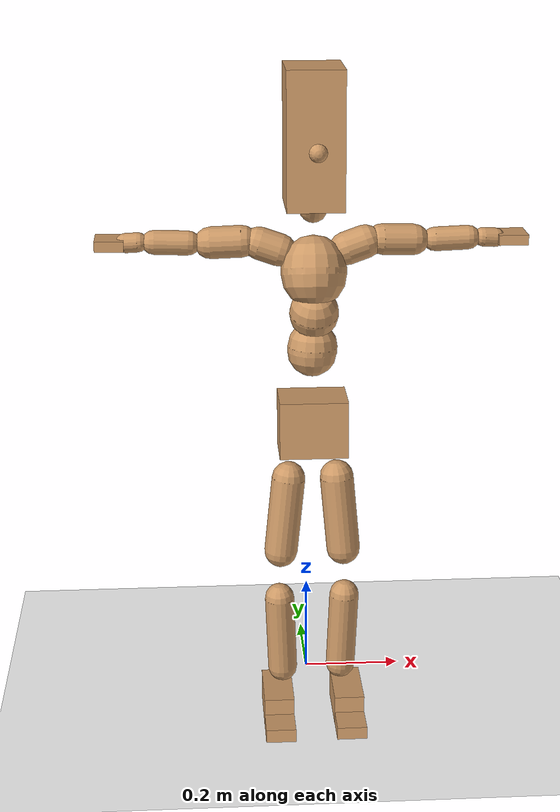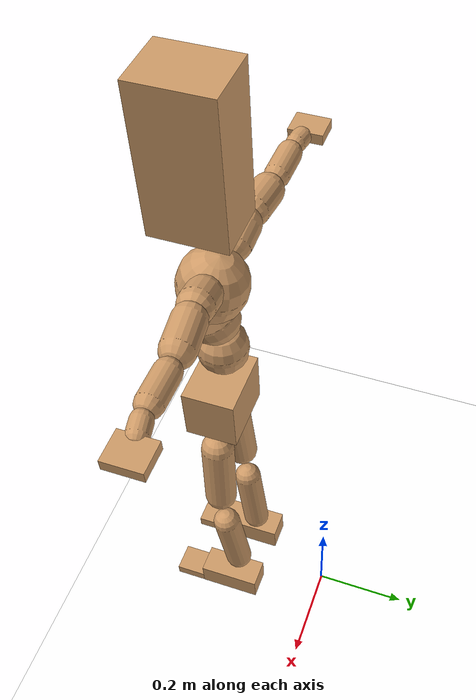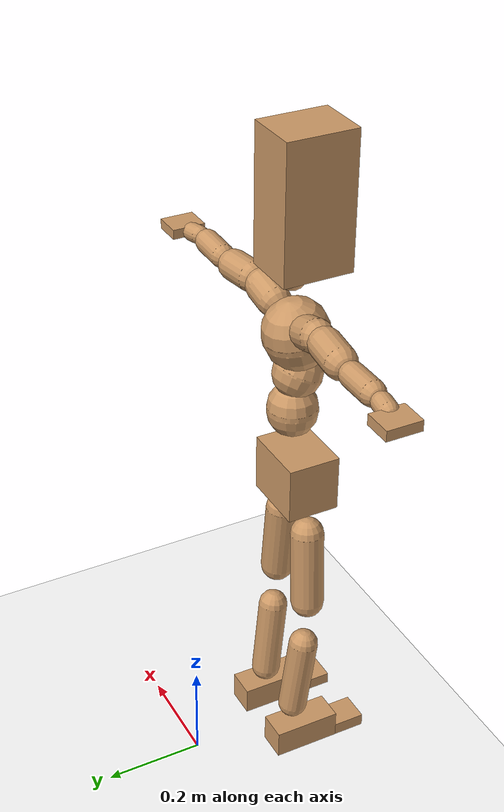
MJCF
<mujoco model="humanoid">
  <option integrator="implicitfast" />

  <visual>
    <global offwidth="1280" offheight="960" />
    <headlight active="1" ambient="0.34 0.34 0.34" diffuse="0.5 0.5 0.5" />
  </visual>

  <default>
    <joint damping="2" stiffness="2" armature="0.01" limited="true" solimplimit="0 .99 .01" />
    <geom condim="1" friction="0.7 0.005 0.0001" solimp=".99 .99 .003" solref="0.015 1" margin="0.001" rgba="0.8 0.6 .4 1" />
    <default class="smplcontact">
      <geom condim="3" friction="1. 0.005 0.0001" solref="0.015 1" solimp="0.98 0.98 0.001" priority="1" />
    </default>
    <default class="stiff_medium">
      <joint stiffness="10" />
    </default>
    <default class="stiff_medium_higher">
      <joint stiffness="50" />
    </default>
    <default class="stiff_high">
      <joint stiffness="100" />
    </default>
  </default>

  <asset>
    <texture type="skybox" builtin="gradient" rgb1="0.99 0.99 0.99" rgb2="0.608 0.828 0.892" width="100" />
    <texture builtin="flat" height="1278" mark="cross" markrgb="1 1 1" name="texgeom" random="0.01" rgb1="0.8 0.6 0.4" rgb2="0.8 0.6 0.4" type="cube" width="127" />
    <texture name="texplane" type="2d" builtin="checker" markrgb="1 1 1" rgb1="0.756 0.772 0.76" rgb2="0.6 0.6 0.6" width="100" height="100" />
    <material name="MatPlane" reflectance="0.5" texture="texplane" texrepeat="1 1" texuniform="true" />
    <material name="geom" texture="texgeom" texuniform="true" />
  </asset>

  <worldbody>
    <light name="tracking_light" pos="0 0 7" dir="0 0 -1" directional="true" cutoff="100" exponent="1" diffuse="1 1 1" specular="0.1 0.1 0.1" mode="trackcom" />
    <camera name="back" pos="0 3 2.4" xyaxes="-1 0 0 0 -1 2" mode="trackcom" />
    <camera name="side" pos="-3 0 2.4" xyaxes="0 -1 0 1 0 2" mode="trackcom" />
    <camera name="front_side" pos="-2.8 -2.8 0.8" xyaxes="0.5 -0.5 0 0.1 0.1 1" mode="trackcom" />
    <geom condim="3" name="floor" pos="0 0 0" rgba="1 1 1 1" size="100 100 .2" type="plane" material="MatPlane" />
    <body name="Pelvis" pos="-0.0018 -0.2233 0.64805" euler="90 0 0">
      <site name="Pelvis" size="0.01" />
      <freejoint name="Pelvis" />
      <geom type="box" pos="0 -0.00952964 -0.0034551" size="0.0671546 0.0568628 0.0521406" quat="1.0000 0.0000 0.0000 0.0000" density="3165.830099" name="Pelvis" />
      <body name="L_Hip" pos="0.0436599 -0.0719842 -0.00427176">
        <joint name="L_Hip_x" type="hinge" pos="0 0 0" axis="1 0 0" stiffness="10" range="-160.0 22.92" class="stiff_medium" damping="15" />
        <joint name="L_Hip_y" type="hinge" pos="0 0 0" axis="0 1 0" stiffness="10" range="-70.0 70.0" class="stiff_medium" damping="10" />
        <joint name="L_Hip_z" type="hinge" pos="0 0 0" axis="0 0 1" stiffness="10" range="-28.65 90.0" class="stiff_medium" damping="10" />
        <geom type="capsule" density="2040.816327" fromto="0.00472379 -0.0514552 -0.000617352 0.018788 -0.205955 -0.00246971" size="0.0336589" name="L_Hip" />
        <body name="L_Knee" pos="0.0235118 -0.257411 -0.00308706">
          <joint name="L_Knee_x" type="hinge" pos="0 0 0" axis="1 0 0" range="-5.16 171.89" damping="8" />
          <joint name="L_Knee_y" type="hinge" pos="0 0 0" axis="0 1 0" range="-4.58 6.88" damping="8" />
          <joint name="L_Knee_z" type="hinge" pos="0 0 0" axis="0 0 1" range="-6.88 4.58" damping="8" />
          <geom type="capsule" density="1234.567901" fromto="-0.00185694 -0.054609 -0.00597782 -0.00748261 -0.21844 -0.0240211" size="0.0296089" name="L_Knee" />
          <body name="L_Ankle" pos="-0.00933956 -0.273049 -0.029999">
            <joint name="L_Ankle_x" type="hinge" pos="0 0 0" axis="1 0 0" range="-45.84 45.84" class="stiff_medium" damping="6" />
            <joint name="L_Ankle_y" type="hinge" pos="0 0 0" axis="0 1 0" range="-74.48 22.92" class="stiff_medium" damping="3" />
            <joint name="L_Ankle_z" type="hinge" pos="0 0 0" axis="0 0 1" range="-4.58 4.58" class="stiff_medium" damping="6" />
            <geom type="box" pos="0.0146371 -0.015014 0.0191539" size="0.0303421 0.0291485 0.067276" quat="1.0000 0.0000 0.0000 0.0000" density="449.071558" name="L_Ankle" class="smplcontact" />
            <body name="L_Toe" pos="0.0165845 -0.0350536 0.0944239">
              <joint name="L_Toe_x" type="hinge" pos="0 0 0" axis="1 0 0" range="-91.67 22.92" />
              <joint name="L_Toe_y" type="hinge" pos="0 0 0" axis="0 1 0" range="-4.58 4.58" />
              <joint name="L_Toe_z" type="hinge" pos="0 0 0" axis="0 0 1" range="-4.58 4.58" />
              <geom type="box" pos="-0.0018846 0.0034551 0.0196288" size="0.030028 0.012564 0.0392576" quat="1.0000 0.0000 0.0000 0.0000" density="423.206892" name="L_Toe" class="smplcontact" />
            </body>
          </body>
        </body>
      </body>
      <body name="R_Hip" pos="-0.0425291 -0.0712754 -0.00270126">
        <joint name="R_Hip_x" type="hinge" pos="0 0 0" axis="1 0 0" stiffness="10" range="-160.0 22.92" class="stiff_medium" damping="15" />
        <joint name="R_Hip_y" type="hinge" pos="0 0 0" axis="0 1 0" stiffness="10" range="-70.0 70.0" class="stiff_medium" damping="10" />
        <joint name="R_Hip_z" type="hinge" pos="0 0 0" axis="0 0 1" stiffness="10" range="-90.0 28.65" class="stiff_medium" damping="10" />
        <geom type="capsule" density="2040.816327" fromto="-0.00527304 -0.0524845 -0.0012302 -0.0209838 -0.210003 -0.0048663" size="0.0331664" name="R_Hip" />
        <body name="R_Knee" pos="-0.0262568 -0.262488 -0.0060965">
          <joint name="R_Knee_x" type="hinge" pos="0 0 0" axis="1 0 0" range="-5.16 171.89" damping="8" />
          <joint name="R_Knee_y" type="hinge" pos="0 0 0" axis="0 1 0" range="-6.88 4.58" damping="8" />
          <joint name="R_Knee_z" type="hinge" pos="0 0 0" axis="0 0 1" range="-4.58 6.88" damping="8" />
          <geom type="capsule" density="1234.567901" fromto="0.00218637 -0.0546801 -0.00582286 0.00863531 -0.218648 -0.0231801" size="0.0296089" name="R_Knee" />
          <body name="R_Ankle" pos="0.0108217 -0.273328 -0.029003">
            <joint name="R_Ankle_x" type="hinge" pos="0 0 0" axis="1 0 0" range="-45.84 45.84" class="stiff_medium" damping="6" />
            <joint name="R_Ankle_y" type="hinge" pos="0 0 0" axis="0 1 0" range="-22.92 74.48" class="stiff_medium" damping="3" />
            <joint name="R_Ankle_z" type="hinge" pos="0 0 0" axis="0 0 1" range="-4.58 4.58" class="stiff_medium" damping="6" />
            <geom type="box" pos="-0.0133178 -0.0109307 0.020262" size="0.0303421 0.030028 0.0684633" quat="1.0000 0.0000 0.0000 0.0000" density="434.700981" name="R_Ankle" class="smplcontact" />
            <body name="R_Toe" pos="-0.0159563 -0.0302164 0.0975898">
              <joint name="R_Toe_x" type="hinge" pos="0 0 0" axis="1 0 0" range="-91.67 22.92" />
              <joint name="R_Toe_y" type="hinge" pos="0 0 0" axis="0 1 0" range="-4.58 4.58" />
              <joint name="R_Toe_z" type="hinge" pos="0 0 0" axis="0 0 1" range="-4.58 4.58" />
              <geom type="box" pos="0.00263844 0.0028269 0.0179667" size="0.0300908 0.0135691 0.0390201" quat="1.0000 0.0000 0.0000 0.0000" density="407.384095" name="R_Toe" class="smplcontact" />
            </body>
          </body>
        </body>
      </body>
      <body name="Torso" pos="-0.0015705 0.0858455 -0.0167729">
        <joint name="Torso_x" type="hinge" pos="0 0 0" axis="1 0 0" range="-25.78 57.3" class="stiff_medium" damping="15" />
        <joint name="Torso_y" type="hinge" pos="0 0 0" axis="0 1 0" range="-57.3 57.3" class="stiff_high" damping="20" />
        <joint name="Torso_z" type="hinge" pos="0 0 0" axis="0 0 1" range="-34.38 34.38" class="stiff_high" damping="20" />
        <geom type="capsule" density="2040.816327" fromto="0.00194921 0.0483762 0.000389842 0.00234703 0.0591173 0.000469406" size="0.0488084" name="Torso" />
        <body name="Spine" pos="0.00429684 0.107573 0.000859367">
          <joint name="Spine_x" type="hinge" pos="0 0 0" axis="1 0 0" stiffness="10" range="-25.78 57.3" class="stiff_medium" damping="15" />
          <joint name="Spine_y" type="hinge" pos="0 0 0" axis="0 1 0" stiffness="10" range="-57.3 57.3" class="stiff_high" damping="8" />
          <joint name="Spine_z" type="hinge" pos="0 0 0" axis="0 0 1" stiffness="20" range="-34.38 34.38" class="stiff_high" damping="12" />
          <geom type="capsule" density="2040.816327" fromto="0.00051624 0.0189192 0.00910629 0.000595804 0.0231361 0.0111749" size="0.0479198" name="Spine" />
          <body name="Chest" pos="0.00111204 0.0420553 0.0202812">
            <joint name="Chest_x" type="hinge" pos="0 0 0" axis="1 0 0" stiffness="10" range="-25.78 57.3" class="stiff_medium" damping="15" />
            <joint name="Chest_y" type="hinge" pos="0 0 0" axis="0 1 0" stiffness="10" range="-57.3 57.3" class="stiff_high" damping="8" />
            <joint name="Chest_z" type="hinge" pos="0 0 0" axis="0 0 1" stiffness="20" range="-34.38 34.38" class="stiff_high" damping="12" />
            <geom type="capsule" density="2040.816327" fromto="-0.00064384 0.0542506 -0.0138121 -0.000723403 0.0662647 -0.0169151" size="0.0635969" name="Chest" />
            <body name="Neck" pos="-0.00200196 0.169707 -0.0359958">
              <joint name="Neck_x" type="hinge" pos="0 0 0" axis="1 0 0" range="-28.65 57.3" class="stiff_medium_higher" damping="10" />
              <joint name="Neck_y" type="hinge" pos="0 0 0" axis="0 1 0" range="-40.11 40.11" class="stiff_medium_higher" damping="10" />
              <joint name="Neck_z" type="hinge" pos="0 0 0" axis="0 0 1" range="-40.11 40.11" class="stiff_medium_higher" damping="10" />
              <geom type="capsule" density="1000" fromto="0.000797004 0.0102916 0.00814877 0.0032506 0.0411594 0.0325264" size="0.027529" name="Neck" />
              <body name="Head" pos="0.00411019 0.0514441 0.0406066">
                <joint name="Head_x" type="hinge" pos="0 0 0" axis="1 0 0" range="-28.65 57.3" class="stiff_medium_higher" damping="2" />
                <joint name="Head_y" type="hinge" pos="0 0 0" axis="0 1 0" range="-40.11 40.11" class="stiff_medium_higher" damping="2" />
                <joint name="Head_z" type="hinge" pos="0 0 0" axis="0 0 1" range="-40.11 40.11" class="stiff_medium_higher" damping="2" />
                <geom type="box" pos="-0.00381528 0.0997578 -0.0105374" size="0.055049 0.131416 0.0690384" quat="1.0000 0.0000 0.0000 0.0000" density="1018.069894" name="Head" />
                <geom type="capsule" name="nose" size="0.018168 0.009084" pos="0 0.0797151 0.04542" quat="1 0 0 0" mass="0" contype="0" conaffinity="0" />
              </body>
            </body>
            <body name="L_Thorax" pos="0.0498845 0.0968534 -0.0267082">
              <joint name="L_Thorax_x" type="hinge" pos="0 0 0" axis="1 0 0" range="-10.89 4.58" class="stiff_medium_higher" damping="20" />
              <joint name="L_Thorax_y" type="hinge" pos="0 0 0" axis="0 1 0" range="-28.65 17.19" class="stiff_medium_higher" damping="20" />
              <joint name="L_Thorax_z" type="hinge" pos="0 0 0" axis="0 0 1" range="-31.51 40.11" class="stiff_medium_higher" damping="20" />
              <geom type="capsule" density="1000" fromto="0.0123762 0.00414806 -0.00122208 0.0495042 0.0165921 -0.00482608" size="0.0323958" name="L_Thorax" />
              <body name="L_Shoulder" pos="0.0618803 0.0207401 -0.00604815">
                <joint name="L_Shoulder_x" type="hinge" pos="0 0 0" axis="1 0 0" range="-97.4 97.4" class="stiff_medium" damping="6" />
                <joint name="L_Shoulder_y" type="hinge" pos="0 0 0" axis="0 1 0" range="-108.86 80.21" class="stiff_medium" damping="6" />
                <joint name="L_Shoulder_z" type="hinge" pos="0 0 0" axis="0 0 1" range="-97.4 85.94" class="stiff_medium" damping="6" />
                <geom type="capsule" density="1000" fromto="0.0204998 -0.00103973 -0.00217309 0.0820408 -0.00404173 -0.00869059" size="0.0300842" name="L_Shoulder" />
                <body name="L_Elbow" pos="0.102541 -0.00508146 -0.0108637">
                  <joint name="L_Elbow_x" type="hinge" pos="0 0 0" axis="1 0 0" range="-17.19 4.58" damping="5" />
                  <joint name="L_Elbow_y" type="hinge" pos="0 0 0" axis="0 1 0" range="-180.0 17.19" damping="5" />
                  <joint name="L_Elbow_z" type="hinge" pos="0 0 0" axis="0 0 1" range="-100.84 4.58" damping="5" />
                  <geom type="capsule" density="1000" fromto="0.021414 0.000774366 -8.09841e-05 0.085742 0.00309637 -0.000381984" size="0.0235669" name="L_Elbow" />
                  <body name="L_Wrist" pos="0.107156 0.00387073 -0.000521158">
                    <joint name="L_Wrist_x" type="hinge" pos="0 0 0" axis="1 0 0" range="-180.0 22.92" />
                    <joint name="L_Wrist_y" type="hinge" pos="0 0 0" axis="0 1 0" range="-17.19 17.19" />
                    <joint name="L_Wrist_z" type="hinge" pos="0 0 0" axis="0 0 1" range="-22.92 22.92" />
                    <geom type="capsule" density="1000" fromto="0.0081483 -0.000772799 -0.00145505 0.0325923 -0.0031493 -0.00582005" size="0.0185044" name="L_Wrist" class="smplcontact" />
                    <body name="L_Hand" pos="0.0407414 -0.00398036 -0.00721705">
                      <joint name="L_Hand_x" type="hinge" pos="0 0 0" axis="1 0 0" range="-17.19 17.19" />
                      <joint name="L_Hand_y" type="hinge" pos="0 0 0" axis="0 1 0" range="-51.57 51.57" />
                      <joint name="L_Hand_z" type="hinge" pos="0 0 0" axis="0 0 1" range="-91.67 91.67" />
                      <geom type="box" pos="0.024157 0.0006282 -0.00364356" size="0.028665 0.00992556 0.0337972" quat="1.0000 0.0000 0.0000 0.0000" density="400.552564" name="L_Hand" class="smplcontact" />
                    </body>
                  </body>
                </body>
              </body>
            </body>
            <body name="R_Thorax" pos="-0.0520477 0.094911 -0.0295381">
              <joint name="R_Thorax_x" type="hinge" pos="0 0 0" axis="1 0 0" range="-10.89 4.58" class="stiff_medium_higher" damping="20" />
              <joint name="R_Thorax_y" type="hinge" pos="0 0 0" axis="0 1 0" range="-17.19 28.65" class="stiff_medium_higher" damping="20" />
              <joint name="R_Thorax_z" type="hinge" pos="0 0 0" axis="0 0 1" range="-40.11 31.51" class="stiff_medium_higher" damping="20" />
              <geom type="capsule" density="1000" fromto="-0.0130558 0.00441994 -0.00122592 -0.0522238 0.0176799 -0.00496592" size="0.031774" name="R_Thorax" />
              <body name="R_Shoulder" pos="-0.0652814 0.0221627 -0.00619202">
                <joint name="R_Shoulder_x" type="hinge" pos="0 0 0" axis="1 0 0" range="-97.4 97.4" class="stiff_medium" damping="6" />
                <joint name="R_Shoulder_y" type="hinge" pos="0 0 0" axis="0 1 0" range="-80.21 108.86" class="stiff_medium" damping="6" />
                <joint name="R_Shoulder_z" type="hinge" pos="0 0 0" axis="0 0 1" range="-85.94 97.4" class="stiff_medium" damping="6" />
                <geom type="capsule" density="1000" fromto="-0.0200255 -0.00107333 -0.0017057 -0.080184 -0.00423333 -0.0067617" size="0.0308989" name="R_Shoulder" />
                <body name="R_Elbow" pos="-0.100211 -0.00524853 -0.00846747">
                  <joint name="R_Elbow_x" type="hinge" pos="0 0 0" axis="1 0 0" range="-17.19 4.58" damping="5" />
                  <joint name="R_Elbow_y" type="hinge" pos="0 0 0" axis="0 1 0" range="-17.19 180.0" damping="5" />
                  <joint name="R_Elbow_z" type="hinge" pos="0 0 0" axis="0 0 1" range="-4.58 100.84" damping="5" />
                  <geom type="capsule" density="1000" fromto="-0.0219727 0.000697814 -0.000472775 -0.0878057 0.00267581 -0.00189178" size="0.0237415" name="R_Elbow" />
                  <body name="R_Wrist" pos="-0.109778 0.00337362 -0.00242273">
                    <joint name="R_Wrist_x" type="hinge" pos="0 0 0" axis="1 0 0" range="-180.0 22.92" />
                    <joint name="R_Wrist_y" type="hinge" pos="0 0 0" axis="0 1 0" range="-17.19 17.19" />
                    <joint name="R_Wrist_z" type="hinge" pos="0 0 0" axis="0 0 1" range="-22.92 22.92" />
                    <geom type="capsule" density="1000" fromto="-0.00819628 -0.000578989 -0.0010221 -0.0328343 -0.00237349 -0.0040291" size="0.0189699" name="R_Wrist" class="smplcontact" />
                    <body name="R_Hand" pos="-0.0410317 -0.00295256 -0.00499315">
                      <joint name="R_Hand_x" type="hinge" pos="0 0 0" axis="1 0 0" range="-17.19 17.19" />
                      <joint name="R_Hand_y" type="hinge" pos="0 0 0" axis="0 1 0" range="-51.57 51.57" />
                      <joint name="R_Hand_z" type="hinge" pos="0 0 0" axis="0 0 1" range="-91.67 91.67" />
                      <geom type="box" pos="-0.022638 -0.00056538 -0.00496278" size="0.027881 0.0103025 0.0342997" quat="1.0000 0.0000 0.0000 0.0000" density="403.679611" name="R_Hand" class="smplcontact" />
                    </body>
                  </body>
                </body>
              </body>
            </body>
          </body>
        </body>
      </body>
    </body>
  </worldbody>
  <actuator>
    <general name="L_Hip_x" joint="L_Hip_x" biastype="affine" gainprm="287.33006409732246" biasprm="-215.3247604770444 -180 -2.0" ctrllimited="true" ctrlrange="-1 1" forcerange="-360 360" />
    <general name="L_Hip_y" joint="L_Hip_y" biastype="affine" gainprm="219.9114857512855" biasprm="0.0 -180 -2.0" ctrllimited="true" ctrlrange="-1 1" forcerange="-360 360" />
    <general name="L_Hip_z" joint="L_Hip_z" biastype="affine" gainprm="186.3749841742145" biasprm="96.3683546488669 -180 -2.0" ctrllimited="true" ctrlrange="-1 1" forcerange="-360 360" />
    <general name="L_Knee_x" joint="L_Knee_x" biastype="affine" gainprm="278.10948965903646" biasprm="261.8988715665131 -180 -2.0" ctrllimited="true" ctrlrange="-1 1" forcerange="-360 360" />
    <general name="L_Knee_y" joint="L_Knee_y" biastype="affine" gainprm="18.001325905069514" biasprm="3.612831551628262 -180 -2.0" ctrllimited="true" ctrlrange="-1 1" forcerange="-360 360" />
    <general name="L_Knee_z" joint="L_Knee_z" biastype="affine" gainprm="18.001325905069514" biasprm="-3.612831551628262 -180 -2.0" ctrllimited="true" ctrlrange="-1 1" forcerange="-360 360" />
    <general name="L_Ankle_x" joint="L_Ankle_x" biastype="affine" gainprm="72.00530362027807" biasprm="0.0 -90 -2.0" ctrllimited="true" ctrlrange="-1 1" forcerange="-180 180" />
    <general name="L_Ankle_y" joint="L_Ankle_y" biastype="affine" gainprm="76.49778111491148" biasprm="-40.49512930477244 -90 -2.0" ctrllimited="true" ctrlrange="-1 1" forcerange="-180 180" />
    <general name="L_Ankle_z" joint="L_Ankle_z" biastype="affine" gainprm="7.1942471767206255" biasprm="0.0 -90 -2.0" ctrllimited="true" ctrlrange="-1 1" forcerange="-180 180" />
    <general name="L_Toe_x" joint="L_Toe_x" biastype="affine" gainprm="71.99902043497087" biasprm="-43.19689898685965 -72 -0.8" ctrllimited="true" ctrlrange="-1 1" forcerange="-144 144" />
    <general name="L_Toe_y" joint="L_Toe_y" biastype="affine" gainprm="5.755397741376501" biasprm="0.0 -72 -0.8" ctrllimited="true" ctrlrange="-1 1" forcerange="-144 144" />
    <general name="L_Toe_z" joint="L_Toe_z" biastype="affine" gainprm="5.755397741376501" biasprm="0.0 -72 -0.8" ctrllimited="true" ctrlrange="-1 1" forcerange="-144 144" />
    <general name="R_Hip_x" joint="R_Hip_x" biastype="affine" gainprm="287.33006409732246" biasprm="-215.3247604770444 -180 -2.0" ctrllimited="true" ctrlrange="-1 1" forcerange="-360 360" />
    <general name="R_Hip_y" joint="R_Hip_y" biastype="affine" gainprm="219.9114857512855" biasprm="0.0 -180 -2.0" ctrllimited="true" ctrlrange="-1 1" forcerange="-360 360" />
    <general name="R_Hip_z" joint="R_Hip_z" biastype="affine" gainprm="186.3749841742145" biasprm="-96.3683546488669 -180 -2.0" ctrllimited="true" ctrlrange="-1 1" forcerange="-360 360" />
    <general name="R_Knee_x" joint="R_Knee_x" biastype="affine" gainprm="278.10948965903646" biasprm="261.8988715665131 -180 -2.0" ctrllimited="true" ctrlrange="-1 1" forcerange="-360 360" />
    <general name="R_Knee_y" joint="R_Knee_y" biastype="affine" gainprm="18.001325905069514" biasprm="-3.612831551628262 -180 -2.0" ctrllimited="true" ctrlrange="-1 1" forcerange="-360 360" />
    <general name="R_Knee_z" joint="R_Knee_z" biastype="affine" gainprm="18.001325905069514" biasprm="3.612831551628262 -180 -2.0" ctrllimited="true" ctrlrange="-1 1" forcerange="-360 360" />
    <general name="R_Ankle_x" joint="R_Ankle_x" biastype="affine" gainprm="72.00530362027807" biasprm="0.0 -90 -2.0" ctrllimited="true" ctrlrange="-1 1" forcerange="-180 180" />
    <general name="R_Ankle_y" joint="R_Ankle_y" biastype="affine" gainprm="76.49778111491148" biasprm="40.49512930477244 -90 -2.0" ctrllimited="true" ctrlrange="-1 1" forcerange="-180 180" />
    <general name="R_Ankle_z" joint="R_Ankle_z" biastype="affine" gainprm="7.1942471767206255" biasprm="0.0 -90 -2.0" ctrllimited="true" ctrlrange="-1 1" forcerange="-180 180" />
    <general name="R_Toe_x" joint="R_Toe_x" biastype="affine" gainprm="71.99902043497087" biasprm="-43.19689898685965 -72 -0.8" ctrllimited="true" ctrlrange="-1 1" forcerange="-144 144" />
    <general name="R_Toe_y" joint="R_Toe_y" biastype="affine" gainprm="5.755397741376501" biasprm="0.0 -72 -0.8" ctrllimited="true" ctrlrange="-1 1" forcerange="-144 144" />
    <general name="R_Toe_z" joint="R_Toe_z" biastype="affine" gainprm="5.755397741376501" biasprm="0.0 -72 -0.8" ctrllimited="true" ctrlrange="-1 1" forcerange="-144 144" />
    <general name="Torso_x" joint="Torso_x" biastype="affine" gainprm="174.00234510682668" biasprm="66.0153336274335 -240 -4.0" ctrllimited="true" ctrlrange="-1 1" forcerange="-360 360" />
    <general name="Torso_y" joint="Torso_y" biastype="affine" gainprm="240.0176787342602" biasprm="0.0 -240 -4.0" ctrllimited="true" ctrlrange="-1 1" forcerange="-360 360" />
    <general name="Torso_z" joint="Torso_z" biastype="affine" gainprm="144.01060724055614" biasprm="0.0 -240 -4.0" ctrllimited="true" ctrlrange="-1 1" forcerange="-360 360" />
    <general name="Spine_x" joint="Spine_x" biastype="affine" gainprm="174.00234510682668" biasprm="66.0153336274335 -240 -4.0" ctrllimited="true" ctrlrange="-1 1" forcerange="-360 360" />
    <general name="Spine_y" joint="Spine_y" biastype="affine" gainprm="240.0176787342602" biasprm="0.0 -240 -4.0" ctrllimited="true" ctrlrange="-1 1" forcerange="-360 360" />
    <general name="Spine_z" joint="Spine_z" biastype="affine" gainprm="144.01060724055614" biasprm="0.0 -240 -4.0" ctrllimited="true" ctrlrange="-1 1" forcerange="-360 360" />
    <general name="Chest_x" joint="Chest_x" biastype="affine" gainprm="174.00234510682668" biasprm="66.0153336274335 -240 -4.0" ctrllimited="true" ctrlrange="-1 1" forcerange="-360 360" />
    <general name="Chest_y" joint="Chest_y" biastype="affine" gainprm="240.0176787342602" biasprm="0.0 -240 -4.0" ctrllimited="true" ctrlrange="-1 1" forcerange="-360 360" />
    <general name="Chest_z" joint="Chest_z" biastype="affine" gainprm="144.01060724055614" biasprm="0.0 -240 -4.0" ctrllimited="true" ctrlrange="-1 1" forcerange="-360 360" />
    <general name="Neck_x" joint="Neck_x" biastype="affine" gainprm="27.00198885760427" biasprm="9.000662952534757 -36 -0.8" ctrllimited="true" ctrlrange="-1 1" forcerange="-72 72" />
    <general name="Neck_y" joint="Neck_y" biastype="affine" gainprm="25.20185626709732" biasprm="0.0 -36 -0.8" ctrllimited="true" ctrlrange="-1 1" forcerange="-72 72" />
    <general name="Neck_z" joint="Neck_z" biastype="affine" gainprm="25.20185626709732" biasprm="0.0 -36 -0.8" ctrllimited="true" ctrlrange="-1 1" forcerange="-72 72" />
    <general name="Head_x" joint="Head_x" biastype="affine" gainprm="18.001325905069514" biasprm="6.000441968356505 -24 -0.8" ctrllimited="true" ctrlrange="-1 1" forcerange="-48 48" />
    <general name="Head_y" joint="Head_y" biastype="affine" gainprm="16.801237511398213" biasprm="0.0 -24 -0.8" ctrllimited="true" ctrlrange="-1 1" forcerange="-48 48" />
    <general name="Head_z" joint="Head_z" biastype="affine" gainprm="16.801237511398213" biasprm="0.0 -24 -0.8" ctrllimited="true" ctrlrange="-1 1" forcerange="-48 48" />
    <general name="L_Thorax_x" joint="L_Thorax_x" biastype="affine" gainprm="16.200146117011364" biasprm="-6.6078165480505335 -120 -1.6" ctrllimited="true" ctrlrange="-1 1" forcerange="-240 240" />
    <general name="L_Thorax_y" joint="L_Thorax_y" biastype="affine" gainprm="48.00353574685204" biasprm="-12.00088393671301 -120 -1.6" ctrllimited="true" ctrlrange="-1 1" forcerange="-240 240" />
    <general name="L_Thorax_z" joint="L_Thorax_z" biastype="affine" gainprm="75.00028861670033" biasprm="9.00589894029074 -120 -1.6" ctrllimited="true" ctrlrange="-1 1" forcerange="-240 240" />
    <general name="L_Shoulder_x" joint="L_Shoulder_x" biastype="affine" gainprm="81.5976331892389" biasprm="0.0 -48 -1.6" ctrllimited="true" ctrlrange="-1 1" forcerange="-96 96" />
    <general name="L_Shoulder_y" joint="L_Shoulder_y" biastype="affine" gainprm="79.19745640189629" biasprm="-12.00088393671301 -48 -1.6" ctrllimited="true" ctrlrange="-1 1" forcerange="-96 96" />
    <general name="L_Shoulder_z" joint="L_Shoulder_z" biastype="affine" gainprm="76.79727961455369" biasprm="-4.800353574685214 -48 -1.6" ctrllimited="true" ctrlrange="-1 1" forcerange="-96 96" />
    <general name="L_Elbow_x" joint="L_Elbow_x" biastype="affine" gainprm="13.67849441372996" biasprm="-7.923096672353461 -72 -0.8" ctrllimited="true" ctrlrange="-1 1" forcerange="-144 144" />
    <general name="L_Elbow_y" joint="L_Elbow_y" biastype="affine" gainprm="123.89813107227425" biasprm="-102.29653998619085 -72 -0.8" ctrllimited="true" ctrlrange="-1 1" forcerange="-144 144" />
    <general name="L_Elbow_z" joint="L_Elbow_z" biastype="affine" gainprm="66.23733950828719" biasprm="-60.4819417669107 -72 -0.8" ctrllimited="true" ctrlrange="-1 1" forcerange="-144 144" />
    <general name="L_Wrist_x" joint="L_Wrist_x" biastype="affine" gainprm="21.24973270888136" biasprm="-16.449379134196157 -12 -0.8" ctrllimited="true" ctrlrange="-1 1" forcerange="-24 24" />
    <general name="L_Wrist_y" joint="L_Wrist_y" biastype="affine" gainprm="3.6002651810139037" biasprm="0.0 -12 -0.8" ctrllimited="true" ctrlrange="-1 1" forcerange="-24 24" />
    <general name="L_Wrist_z" joint="L_Wrist_z" biastype="affine" gainprm="4.800353574685205" biasprm="0.0 -12 -0.8" ctrllimited="true" ctrlrange="-1 1" forcerange="-24 24" />
    <general name="L_Hand_x" joint="L_Hand_x" biastype="affine" gainprm="3.6002651810139037" biasprm="0.0 -12 -0.8" ctrllimited="true" ctrlrange="-1 1" forcerange="-24 24" />
    <general name="L_Hand_y" joint="L_Hand_y" biastype="affine" gainprm="10.800795543041708" biasprm="0.0 -12 -0.8" ctrllimited="true" ctrlrange="-1 1" forcerange="-24 24" />
    <general name="L_Hand_z" joint="L_Hand_z" biastype="affine" gainprm="19.199319903638422" biasprm="0.0 -12 -0.8" ctrllimited="true" ctrlrange="-1 1" forcerange="-24 24" />
    <general name="R_Thorax_x" joint="R_Thorax_x" biastype="affine" gainprm="16.200146117011364" biasprm="-6.6078165480505335 -120 -1.6" ctrllimited="true" ctrlrange="-1 1" forcerange="-240 240" />
    <general name="R_Thorax_y" joint="R_Thorax_y" biastype="affine" gainprm="48.00353574685204" biasprm="12.000883936713002 -120 -1.6" ctrllimited="true" ctrlrange="-1 1" forcerange="-240 240" />
    <general name="R_Thorax_z" joint="R_Thorax_z" biastype="affine" gainprm="75.00028861670033" biasprm="-9.00589894029074 -120 -1.6" ctrllimited="true" ctrlrange="-1 1" forcerange="-240 240" />
    <general name="R_Shoulder_x" joint="R_Shoulder_x" biastype="affine" gainprm="81.5976331892389" biasprm="0.0 -48 -1.6" ctrllimited="true" ctrlrange="-1 1" forcerange="-96 96" />
    <general name="R_Shoulder_y" joint="R_Shoulder_y" biastype="affine" gainprm="79.19745640189629" biasprm="12.00088393671301 -48 -1.6" ctrllimited="true" ctrlrange="-1 1" forcerange="-96 96" />
    <general name="R_Shoulder_z" joint="R_Shoulder_z" biastype="affine" gainprm="76.79727961455369" biasprm="4.800353574685204 -48 -1.6" ctrllimited="true" ctrlrange="-1 1" forcerange="-96 96" />
    <general name="R_Elbow_x" joint="R_Elbow_x" biastype="affine" gainprm="13.67849441372996" biasprm="-7.923096672353461 -72 -0.8" ctrllimited="true" ctrlrange="-1 1" forcerange="-144 144" />
    <general name="R_Elbow_y" joint="R_Elbow_y" biastype="affine" gainprm="123.89813107227425" biasprm="102.29653998619085 -72 -0.8" ctrllimited="true" ctrlrange="-1 1" forcerange="-144 144" />
    <general name="R_Elbow_z" joint="R_Elbow_z" biastype="affine" gainprm="66.23733950828719" biasprm="60.481941766910694 -72 -0.8" ctrllimited="true" ctrlrange="-1 1" forcerange="-144 144" />
    <general name="R_Wrist_x" joint="R_Wrist_x" biastype="affine" gainprm="21.24973270888136" biasprm="-16.449379134196157 -12 -0.8" ctrllimited="true" ctrlrange="-1 1" forcerange="-24 24" />
    <general name="R_Wrist_y" joint="R_Wrist_y" biastype="affine" gainprm="3.6002651810139037" biasprm="0.0 -12 -0.8" ctrllimited="true" ctrlrange="-1 1" forcerange="-24 24" />
    <general name="R_Wrist_z" joint="R_Wrist_z" biastype="affine" gainprm="4.800353574685205" biasprm="0.0 -12 -0.8" ctrllimited="true" ctrlrange="-1 1" forcerange="-24 24" />
    <general name="R_Hand_x" joint="R_Hand_x" biastype="affine" gainprm="3.6002651810139037" biasprm="0.0 -12 -0.8" ctrllimited="true" ctrlrange="-1 1" forcerange="-24 24" />
    <general name="R_Hand_y" joint="R_Hand_y" biastype="affine" gainprm="10.800795543041708" biasprm="0.0 -12 -0.8" ctrllimited="true" ctrlrange="-1 1" forcerange="-24 24" />
    <general name="R_Hand_z" joint="R_Hand_z" biastype="affine" gainprm="19.199319903638422" biasprm="0.0 -12 -0.8" ctrllimited="true" ctrlrange="-1 1" forcerange="-24 24" />
  </actuator>
  <contact>
    <exclude body1="Torso" body2="Chest" />
    <exclude body1="Head" body2="Chest" />
    <exclude body1="R_Knee" body2="R_Toe" />
    <exclude body1="R_Knee" body2="L_Ankle" />
    <exclude body1="R_Knee" body2="L_Toe" />
    <exclude body1="L_Knee" body2="L_Toe" />
    <exclude body1="L_Knee" body2="R_Ankle" />
    <exclude body1="L_Knee" body2="R_Toe" />
    <exclude body1="L_Shoulder" body2="Chest" />
    <exclude body1="R_Shoulder" body2="Chest" />
  </contact>
  <sensor>
    <framelinvel name="sensor_Pelvis_framelinvel" objtype="xbody" objname="Pelvis" />
    <framelinvel name="sensor_L_Hip_framelinvel" objtype="xbody" objname="L_Hip" />
    <framelinvel name="sensor_L_Knee_framelinvel" objtype="xbody" objname="L_Knee" />
    <framelinvel name="sensor_L_Ankle_framelinvel" objtype="xbody" objname="L_Ankle" />
    <framelinvel name="sensor_L_Toe_framelinvel" objtype="xbody" objname="L_Toe" />
    <framelinvel name="sensor_R_Hip_framelinvel" objtype="xbody" objname="R_Hip" />
    <framelinvel name="sensor_R_Knee_framelinvel" objtype="xbody" objname="R_Knee" />
    <framelinvel name="sensor_R_Ankle_framelinvel" objtype="xbody" objname="R_Ankle" />
    <framelinvel name="sensor_R_Toe_framelinvel" objtype="xbody" objname="R_Toe" />
    <framelinvel name="sensor_Torso_framelinvel" objtype="xbody" objname="Torso" />
    <framelinvel name="sensor_Spine_framelinvel" objtype="xbody" objname="Spine" />
    <framelinvel name="sensor_Chest_framelinvel" objtype="xbody" objname="Chest" />
    <framelinvel name="sensor_Neck_framelinvel" objtype="xbody" objname="Neck" />
    <framelinvel name="sensor_Head_framelinvel" objtype="xbody" objname="Head" />
    <framelinvel name="sensor_L_Thorax_framelinvel" objtype="xbody" objname="L_Thorax" />
    <framelinvel name="sensor_L_Shoulder_framelinvel" objtype="xbody" objname="L_Shoulder" />
    <framelinvel name="sensor_L_Elbow_framelinvel" objtype="xbody" objname="L_Elbow" />
    <framelinvel name="sensor_L_Wrist_framelinvel" objtype="xbody" objname="L_Wrist" />
    <framelinvel name="sensor_L_Hand_framelinvel" objtype="xbody" objname="L_Hand" />
    <framelinvel name="sensor_R_Thorax_framelinvel" objtype="xbody" objname="R_Thorax" />
    <framelinvel name="sensor_R_Shoulder_framelinvel" objtype="xbody" objname="R_Shoulder" />
    <framelinvel name="sensor_R_Elbow_framelinvel" objtype="xbody" objname="R_Elbow" />
    <framelinvel name="sensor_R_Wrist_framelinvel" objtype="xbody" objname="R_Wrist" />
    <framelinvel name="sensor_R_Hand_framelinvel" objtype="xbody" objname="R_Hand" />
    <frameangvel name="sensor_Pelvis_frameangvel" objtype="xbody" objname="Pelvis" />
    <frameangvel name="sensor_L_Hip_frameangvel" objtype="xbody" objname="L_Hip" />
    <frameangvel name="sensor_L_Knee_frameangvel" objtype="xbody" objname="L_Knee" />
    <frameangvel name="sensor_L_Ankle_frameangvel" objtype="xbody" objname="L_Ankle" />
    <frameangvel name="sensor_L_Toe_frameangvel" objtype="xbody" objname="L_Toe" />
    <frameangvel name="sensor_R_Hip_frameangvel" objtype="xbody" objname="R_Hip" />
    <frameangvel name="sensor_R_Knee_frameangvel" objtype="xbody" objname="R_Knee" />
    <frameangvel name="sensor_R_Ankle_frameangvel" objtype="xbody" objname="R_Ankle" />
    <frameangvel name="sensor_R_Toe_frameangvel" objtype="xbody" objname="R_Toe" />
    <frameangvel name="sensor_Torso_frameangvel" objtype="xbody" objname="Torso" />
    <frameangvel name="sensor_Spine_frameangvel" objtype="xbody" objname="Spine" />
    <frameangvel name="sensor_Chest_frameangvel" objtype="xbody" objname="Chest" />
    <frameangvel name="sensor_Neck_frameangvel" objtype="xbody" objname="Neck" />
    <frameangvel name="sensor_Head_frameangvel" objtype="xbody" objname="Head" />
    <frameangvel name="sensor_L_Thorax_frameangvel" objtype="xbody" objname="L_Thorax" />
    <frameangvel name="sensor_L_Shoulder_frameangvel" objtype="xbody" objname="L_Shoulder" />
    <frameangvel name="sensor_L_Elbow_frameangvel" objtype="xbody" objname="L_Elbow" />
    <frameangvel name="sensor_L_Wrist_frameangvel" objtype="xbody" objname="L_Wrist" />
    <frameangvel name="sensor_L_Hand_frameangvel" objtype="xbody" objname="L_Hand" />
    <frameangvel name="sensor_R_Thorax_frameangvel" objtype="xbody" objname="R_Thorax" />
    <frameangvel name="sensor_R_Shoulder_frameangvel" objtype="xbody" objname="R_Shoulder" />
    <frameangvel name="sensor_R_Elbow_frameangvel" objtype="xbody" objname="R_Elbow" />
    <frameangvel name="sensor_R_Wrist_frameangvel" objtype="xbody" objname="R_Wrist" />
    <frameangvel name="sensor_R_Hand_frameangvel" objtype="xbody" objname="R_Hand" />
    <subtreelinvel name="Chest_subtreelinvel" body="Chest" />
    <gyro name="Pelvis_gyro" site="Pelvis" />
  </sensor>
</mujoco>
